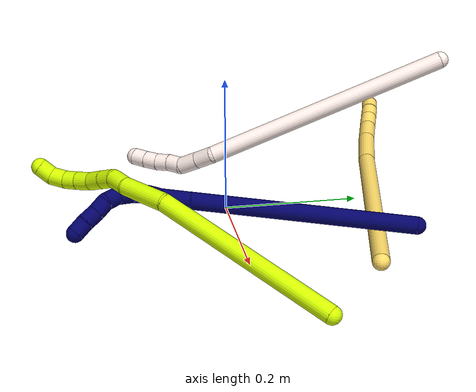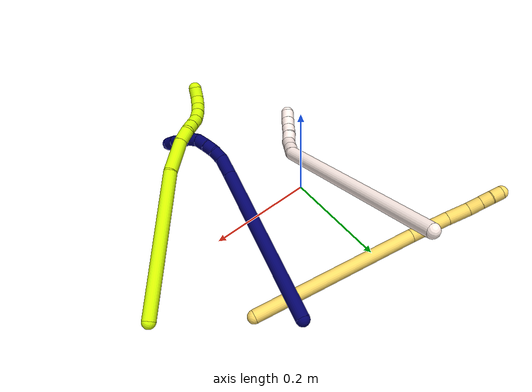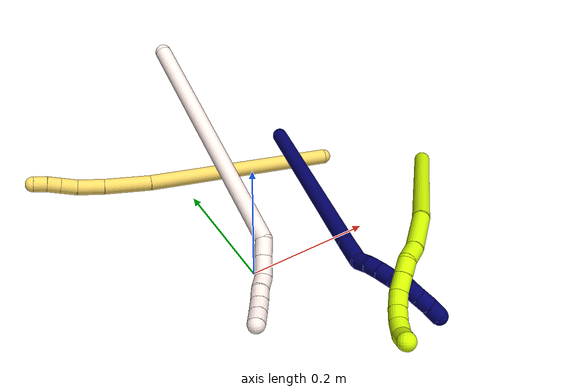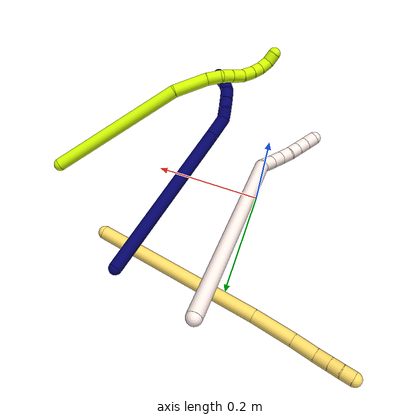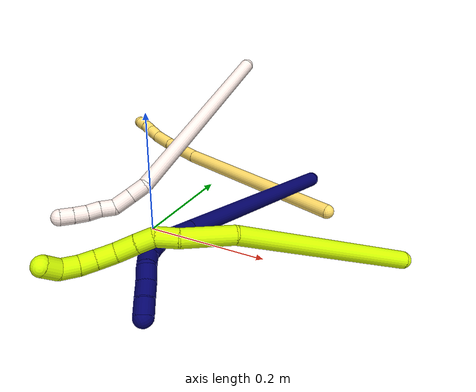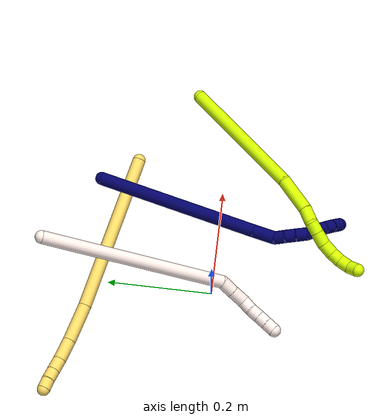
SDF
<sdf version="1.7">
 <world name="default">
  <model name="5">
   <static>0</static>
   <link name="5">
    <collision name="collision-cylinder-e_1_1_4">
     <pose>-0.079078 -0.083416 0.106648 0.663771 -0.528612 -0.186003</pose>
     <geometry><cylinder><radius>0.0125</radius><length>0.313594</length></cylinder></geometry>
     <surface>
      <friction><ode><mu>1.16</mu><mu2>1.16</mu2><slip1>0</slip1><slip2>0</slip2></ode></friction>
      <contact><ode><kp>1e+06</kp><kd>1</kd><max_vel>0</max_vel><min_depth>0.001</min_depth></ode></contact>
     </surface>
    </collision>
    <visual name="visual-cylinder-e_1_1_4">
     <pose>-0.079078 -0.083416 0.106648 0.663771 -0.528612 -0.186003</pose>
     <geometry><cylinder><radius>0.0125</radius><length>0.313594</length></cylinder></geometry>
     <material><ambient>1 0.858824 0.4 1</ambient></material>
    </visual>
    <collision name="collision-cylinder-e_2_4_5">
     <pose>-0.179004 -0.187495 0.237146 0.713914 -0.583826 -0.223199</pose>
     <geometry><cylinder><radius>0.0125</radius><length>0.075643</length></cylinder></geometry>
     <surface>
      <friction><ode><mu>1.16</mu><mu2>1.16</mu2><slip1>0</slip1><slip2>0</slip2></ode></friction>
      <contact><ode><kp>1e+06</kp><kd>1</kd><max_vel>0</max_vel><min_depth>0.001</min_depth></ode></contact>
     </surface>
    </collision>
    <visual name="visual-cylinder-e_2_4_5">
     <pose>-0.179004 -0.187495 0.237146 0.713914 -0.583826 -0.223199</pose>
     <geometry><cylinder><radius>0.0125</radius><length>0.075643</length></cylinder></geometry>
     <material><ambient>1 0.858824 0.4 1</ambient></material>
    </visual>
    <collision name="collision-cylinder-e_3_5_6">
     <pose>-0.212444 -0.220042 0.273462 0.761499 -0.631299 -0.259965</pose>
     <geometry><cylinder><radius>0.0125</radius><length>0.042669</length></cylinder></geometry>
     <surface>
      <friction><ode><mu>1.16</mu><mu2>1.16</mu2><slip1>0</slip1><slip2>0</slip2></ode></friction>
      <contact><ode><kp>1e+06</kp><kd>1</kd><max_vel>0</max_vel><min_depth>0.001</min_depth></ode></contact>
     </surface>
    </collision>
    <visual name="visual-cylinder-e_3_5_6">
     <pose>-0.212444 -0.220042 0.273462 0.761499 -0.631299 -0.259965</pose>
     <geometry><cylinder><radius>0.0125</radius><length>0.042669</length></cylinder></geometry>
     <material><ambient>1 0.858824 0.4 1</ambient></material>
    </visual>
    <collision name="collision-cylinder-e_4_6_7">
     <pose>-0.234369 -0.238139 0.292699 0.742468 -0.793149 -0.323191</pose>
     <geometry><cylinder><radius>0.0125</radius><length>0.026197</length></cylinder></geometry>
     <surface>
      <friction><ode><mu>1.16</mu><mu2>1.16</mu2><slip1>0</slip1><slip2>0</slip2></ode></friction>
      <contact><ode><kp>1e+06</kp><kd>1</kd><max_vel>0</max_vel><min_depth>0.001</min_depth></ode></contact>
     </surface>
    </collision>
    <visual name="visual-cylinder-e_4_6_7">
     <pose>-0.234369 -0.238139 0.292699 0.742468 -0.793149 -0.323191</pose>
     <geometry><cylinder><radius>0.0125</radius><length>0.026197</length></cylinder></geometry>
     <material><ambient>1 0.858824 0.4 1</ambient></material>
    </visual>
    <collision name="collision-cylinder-e_5_7_8">
     <pose>-0.251285 -0.249417 0.304962 0.744932 -0.792836 -0.324208</pose>
     <geometry><cylinder><radius>0.0125</radius><length>0.021289</length></cylinder></geometry>
     <surface>
      <friction><ode><mu>1.16</mu><mu2>1.16</mu2><slip1>0</slip1><slip2>0</slip2></ode></friction>
      <contact><ode><kp>1e+06</kp><kd>1</kd><max_vel>0</max_vel><min_depth>0.001</min_depth></ode></contact>
     </surface>
    </collision>
    <visual name="visual-cylinder-e_5_7_8">
     <pose>-0.251285 -0.249417 0.304962 0.744932 -0.792836 -0.324208</pose>
     <geometry><cylinder><radius>0.0125</radius><length>0.021289</length></cylinder></geometry>
     <material><ambient>1 0.858824 0.4 1</ambient></material>
    </visual>
    <collision name="collision-cylinder-e_6_8_2">
     <pose>-0.265245 -0.259767 0.316584 0.711568 -0.667371 -0.256216</pose>
     <geometry><cylinder><radius>0.0125</radius><length>0.020608</length></cylinder></geometry>
     <surface>
      <friction><ode><mu>1.16</mu><mu2>1.16</mu2><slip1>0</slip1><slip2>0</slip2></ode></friction>
      <contact><ode><kp>1e+06</kp><kd>1</kd><max_vel>0</max_vel><min_depth>0.001</min_depth></ode></contact>
     </surface>
    </collision>
    <visual name="visual-cylinder-e_6_8_2">
     <pose>-0.265245 -0.259767 0.316584 0.711568 -0.667371 -0.256216</pose>
     <geometry><cylinder><radius>0.0125</radius><length>0.020608</length></cylinder></geometry>
     <material><ambient>1 0.858824 0.4 1</ambient></material>
    </visual>
    <collision name="collision-sphere-2">
     <pose>-0.271622 -0.265052 0.322713 0 -0 0</pose>
     <geometry><sphere><radius>0.0125</radius></sphere></geometry>
     <surface>
      <friction><ode><mu>1.16</mu><mu2>1.16</mu2><slip1>0</slip1><slip2>0</slip2></ode></friction>
      <contact><ode><kp>1e+06</kp><kd>1</kd><max_vel>0</max_vel><min_depth>0.001</min_depth></ode></contact>
     </surface>
    </collision>
    <visual name="visual-sphere-2">
     <pose>-0.271622 -0.265052 0.322713 0 -0 0</pose>
     <geometry><sphere><radius>0.0125</radius></sphere></geometry>
     <material><ambient>1 0.858824 0.4 1</ambient></material>
    </visual>
    <collision name="collision-sphere-4">
     <pose>-0.158156 -0.166832 0.213295 0 -0 0</pose>
     <geometry><sphere><radius>0.0125</radius></sphere></geometry>
     <surface>
      <friction><ode><mu>1.16</mu><mu2>1.16</mu2><slip1>0</slip1><slip2>0</slip2></ode></friction>
      <contact><ode><kp>1e+06</kp><kd>1</kd><max_vel>0</max_vel><min_depth>0.001</min_depth></ode></contact>
     </surface>
    </collision>
    <visual name="visual-sphere-4">
     <pose>-0.158156 -0.166832 0.213295 0 -0 0</pose>
     <geometry><sphere><radius>0.0125</radius></sphere></geometry>
     <material><ambient>1 0.858824 0.4 1</ambient></material>
    </visual>
    <collision name="collision-sphere-1">
     <geometry><sphere><radius>0.0125</radius></sphere></geometry>
     <surface>
      <friction><ode><mu>1.16</mu><mu2>1.16</mu2><slip1>0</slip1><slip2>0</slip2></ode></friction>
      <contact><ode><kp>1e+06</kp><kd>1</kd><max_vel>0</max_vel><min_depth>0.001</min_depth></ode></contact>
     </surface>
    </collision>
    <visual name="visual-sphere-1">
     <geometry><sphere><radius>0.0125</radius></sphere></geometry>
     <material><ambient>1 0.858824 0.4 1</ambient></material>
    </visual>
    <collision name="collision-sphere-8">
     <pose>-0.258868 -0.254482 0.310454 0 -0 0</pose>
     <geometry><sphere><radius>0.0125</radius></sphere></geometry>
     <surface>
      <friction><ode><mu>1.16</mu><mu2>1.16</mu2><slip1>0</slip1><slip2>0</slip2></ode></friction>
      <contact><ode><kp>1e+06</kp><kd>1</kd><max_vel>0</max_vel><min_depth>0.001</min_depth></ode></contact>
     </surface>
    </collision>
    <visual name="visual-sphere-8">
     <pose>-0.258868 -0.254482 0.310454 0 -0 0</pose>
     <geometry><sphere><radius>0.0125</radius></sphere></geometry>
     <material><ambient>1 0.858824 0.4 1</ambient></material>
    </visual>
    <collision name="collision-sphere-5">
     <pose>-0.199852 -0.208159 0.260997 0 -0 0</pose>
     <geometry><sphere><radius>0.0125</radius></sphere></geometry>
     <surface>
      <friction><ode><mu>1.16</mu><mu2>1.16</mu2><slip1>0</slip1><slip2>0</slip2></ode></friction>
      <contact><ode><kp>1e+06</kp><kd>1</kd><max_vel>0</max_vel><min_depth>0.001</min_depth></ode></contact>
     </surface>
    </collision>
    <visual name="visual-sphere-5">
     <pose>-0.199852 -0.208159 0.260997 0 -0 0</pose>
     <geometry><sphere><radius>0.0125</radius></sphere></geometry>
     <material><ambient>1 0.858824 0.4 1</ambient></material>
    </visual>
    <collision name="collision-sphere-6">
     <pose>-0.225035 -0.231926 0.285928 0 -0 0</pose>
     <geometry><sphere><radius>0.0125</radius></sphere></geometry>
     <surface>
      <friction><ode><mu>1.16</mu><mu2>1.16</mu2><slip1>0</slip1><slip2>0</slip2></ode></friction>
      <contact><ode><kp>1e+06</kp><kd>1</kd><max_vel>0</max_vel><min_depth>0.001</min_depth></ode></contact>
     </surface>
    </collision>
    <visual name="visual-sphere-6">
     <pose>-0.225035 -0.231926 0.285928 0 -0 0</pose>
     <geometry><sphere><radius>0.0125</radius></sphere></geometry>
     <material><ambient>1 0.858824 0.4 1</ambient></material>
    </visual>
    <collision name="collision-sphere-7">
     <pose>-0.243702 -0.244352 0.29947 0 -0 0</pose>
     <geometry><sphere><radius>0.0125</radius></sphere></geometry>
     <surface>
      <friction><ode><mu>1.16</mu><mu2>1.16</mu2><slip1>0</slip1><slip2>0</slip2></ode></friction>
      <contact><ode><kp>1e+06</kp><kd>1</kd><max_vel>0</max_vel><min_depth>0.001</min_depth></ode></contact>
     </surface>
    </collision>
    <visual name="visual-sphere-7">
     <pose>-0.243702 -0.244352 0.29947 0 -0 0</pose>
     <geometry><sphere><radius>0.0125</radius></sphere></geometry>
     <material><ambient>1 0.858824 0.4 1</ambient></material>
    </visual>
    <inertial>
     <pose>-0.128718 -0.133264 0.16747 0 -0 0</pose>
     <mass>0.5</mass>
     <inertia><ixx>0.00179</ixx><ixy>0</ixy><ixz>0</ixz><iyy>0.001747</iyy><iyz>0</iyz><izz>0.00276</izz></inertia>
    </inertial>
   </link>
   <pose>0.245457 0.170033 0.012283 1.97479 1.06973 -0.641819</pose>
  </model>
  <model name="7">
   <static>0</static>
   <link name="7">
    <collision name="collision-cylinder-e_1_1_4">
     <pose>-0.028344 -0.039597 -0.149468 2.88262 -0.181294 -1.21883</pose>
     <geometry><cylinder><radius>0.0125</radius><length>0.3144</length></cylinder></geometry>
     <surface>
      <friction><ode><mu>1.16</mu><mu2>1.16</mu2><slip1>0</slip1><slip2>0</slip2></ode></friction>
      <contact><ode><kp>1e+06</kp><kd>1</kd><max_vel>0</max_vel><min_depth>0.001</min_depth></ode></contact>
     </surface>
    </collision>
    <visual name="visual-cylinder-e_1_1_4">
     <pose>-0.028344 -0.039597 -0.149468 2.88262 -0.181294 -1.21883</pose>
     <geometry><cylinder><radius>0.0125</radius><length>0.3144</length></cylinder></geometry>
     <material><ambient>0.003922 0 0.403922 1</ambient></material>
    </visual>
    <collision name="collision-cylinder-e_2_4_5">
     <pose>-0.060613 -0.084917 -0.319162 2.86586 -0.184636 -1.17685</pose>
     <geometry><cylinder><radius>0.0125</radius><length>0.042769</length></cylinder></geometry>
     <surface>
      <friction><ode><mu>1.16</mu><mu2>1.16</mu2><slip1>0</slip1><slip2>0</slip2></ode></friction>
      <contact><ode><kp>1e+06</kp><kd>1</kd><max_vel>0</max_vel><min_depth>0.001</min_depth></ode></contact>
     </surface>
    </collision>
    <visual name="visual-cylinder-e_2_4_5">
     <pose>-0.060613 -0.084917 -0.319162 2.86586 -0.184636 -1.17685</pose>
     <geometry><cylinder><radius>0.0125</radius><length>0.042769</length></cylinder></geometry>
     <material><ambient>0.003922 0 0.403922 1</ambient></material>
    </visual>
    <collision name="collision-cylinder-e_3_5_6">
     <pose>-0.067632 -0.097492 -0.346662 2.38595 -0.300195 -0.728127</pose>
     <geometry><cylinder><radius>0.0125</radius><length>0.020918</length></cylinder></geometry>
     <surface>
      <friction><ode><mu>1.16</mu><mu2>1.16</mu2><slip1>0</slip1><slip2>0</slip2></ode></friction>
      <contact><ode><kp>1e+06</kp><kd>1</kd><max_vel>0</max_vel><min_depth>0.001</min_depth></ode></contact>
     </surface>
    </collision>
    <visual name="visual-cylinder-e_3_5_6">
     <pose>-0.067632 -0.097492 -0.346662 2.38595 -0.300195 -0.728127</pose>
     <geometry><cylinder><radius>0.0125</radius><length>0.020918</length></cylinder></geometry>
     <material><ambient>0.003922 0 0.403922 1</ambient></material>
    </visual>
    <collision name="collision-cylinder-e_4_6_7">
     <pose>-0.071303 -0.110808 -0.361621 2.44237 -0.057491 -0.157407</pose>
     <geometry><cylinder><radius>0.0125</radius><length>0.020121</length></cylinder></geometry>
     <surface>
      <friction><ode><mu>1.16</mu><mu2>1.16</mu2><slip1>0</slip1><slip2>0</slip2></ode></friction>
      <contact><ode><kp>1e+06</kp><kd>1</kd><max_vel>0</max_vel><min_depth>0.001</min_depth></ode></contact>
     </surface>
    </collision>
    <visual name="visual-cylinder-e_4_6_7">
     <pose>-0.071303 -0.110808 -0.361621 2.44237 -0.057491 -0.157407</pose>
     <geometry><cylinder><radius>0.0125</radius><length>0.020121</length></cylinder></geometry>
     <material><ambient>0.003922 0 0.403922 1</ambient></material>
    </visual>
    <collision name="collision-cylinder-e_5_7_8">
     <pose>-0.071316 -0.124107 -0.377761 2.46172 0.051953 0.146667</pose>
     <geometry><cylinder><radius>0.0125</radius><length>0.021772</length></cylinder></geometry>
     <surface>
      <friction><ode><mu>1.16</mu><mu2>1.16</mu2><slip1>0</slip1><slip2>0</slip2></ode></friction>
      <contact><ode><kp>1e+06</kp><kd>1</kd><max_vel>0</max_vel><min_depth>0.001</min_depth></ode></contact>
     </surface>
    </collision>
    <visual name="visual-cylinder-e_5_7_8">
     <pose>-0.071316 -0.124107 -0.377761 2.46172 0.051953 0.146667</pose>
     <geometry><cylinder><radius>0.0125</radius><length>0.021772</length></cylinder></geometry>
     <material><ambient>0.003922 0 0.403922 1</ambient></material>
    </visual>
    <collision name="collision-cylinder-e_6_8_9">
     <pose>-0.0673 -0.138248 -0.392107 2.24939 0.352317 0.712618</pose>
     <geometry><cylinder><radius>0.0125</radius><length>0.020001</length></cylinder></geometry>
     <surface>
      <friction><ode><mu>1.16</mu><mu2>1.16</mu2><slip1>0</slip1><slip2>0</slip2></ode></friction>
      <contact><ode><kp>1e+06</kp><kd>1</kd><max_vel>0</max_vel><min_depth>0.001</min_depth></ode></contact>
     </surface>
    </collision>
    <visual name="visual-cylinder-e_6_8_9">
     <pose>-0.0673 -0.138248 -0.392107 2.24939 0.352317 0.712618</pose>
     <geometry><cylinder><radius>0.0125</radius><length>0.020001</length></cylinder></geometry>
     <material><ambient>0.003922 0 0.403922 1</ambient></material>
    </visual>
    <collision name="collision-cylinder-e_7_9_10">
     <pose>-0.056995 -0.150361 -0.403486 2.4223 0.754272 1.62284</pose>
     <geometry><cylinder><radius>0.0125</radius><length>0.020018</length></cylinder></geometry>
     <surface>
      <friction><ode><mu>1.16</mu><mu2>1.16</mu2><slip1>0</slip1><slip2>0</slip2></ode></friction>
      <contact><ode><kp>1e+06</kp><kd>1</kd><max_vel>0</max_vel><min_depth>0.001</min_depth></ode></contact>
     </surface>
    </collision>
    <visual name="visual-cylinder-e_7_9_10">
     <pose>-0.056995 -0.150361 -0.403486 2.4223 0.754272 1.62284</pose>
     <geometry><cylinder><radius>0.0125</radius><length>0.020018</length></cylinder></geometry>
     <material><ambient>0.003922 0 0.403922 1</ambient></material>
    </visual>
    <collision name="collision-cylinder-e_8_10_11">
     <pose>-0.044161 -0.160456 -0.414995 2.42081 0.641026 1.44429</pose>
     <geometry><cylinder><radius>0.0125</radius><length>0.020001</length></cylinder></geometry>
     <surface>
      <friction><ode><mu>1.16</mu><mu2>1.16</mu2><slip1>0</slip1><slip2>0</slip2></ode></friction>
      <contact><ode><kp>1e+06</kp><kd>1</kd><max_vel>0</max_vel><min_depth>0.001</min_depth></ode></contact>
     </surface>
    </collision>
    <visual name="visual-cylinder-e_8_10_11">
     <pose>-0.044161 -0.160456 -0.414995 2.42081 0.641026 1.44429</pose>
     <geometry><cylinder><radius>0.0125</radius><length>0.020001</length></cylinder></geometry>
     <material><ambient>0.003922 0 0.403922 1</ambient></material>
    </visual>
    <collision name="collision-cylinder-e_9_11_2">
     <pose>-0.031274 -0.170037 -0.426839 2.50647 0.762289 1.76773</pose>
     <geometry><cylinder><radius>0.0125</radius><length>0.02</length></cylinder></geometry>
     <surface>
      <friction><ode><mu>1.16</mu><mu2>1.16</mu2><slip1>0</slip1><slip2>0</slip2></ode></friction>
      <contact><ode><kp>1e+06</kp><kd>1</kd><max_vel>0</max_vel><min_depth>0.001</min_depth></ode></contact>
     </surface>
    </collision>
    <visual name="visual-cylinder-e_9_11_2">
     <pose>-0.031274 -0.170037 -0.426839 2.50647 0.762289 1.76773</pose>
     <geometry><cylinder><radius>0.0125</radius><length>0.02</length></cylinder></geometry>
     <material><ambient>0.003922 0 0.403922 1</ambient></material>
    </visual>
    <collision name="collision-sphere-2">
     <pose>-0.024369 -0.174328 -0.432661 0 -0 0</pose>
     <geometry><sphere><radius>0.0125</radius></sphere></geometry>
     <surface>
      <friction><ode><mu>1.16</mu><mu2>1.16</mu2><slip1>0</slip1><slip2>0</slip2></ode></friction>
      <contact><ode><kp>1e+06</kp><kd>1</kd><max_vel>0</max_vel><min_depth>0.001</min_depth></ode></contact>
     </surface>
    </collision>
    <visual name="visual-sphere-2">
     <pose>-0.024369 -0.174328 -0.432661 0 -0 0</pose>
     <geometry><sphere><radius>0.0125</radius></sphere></geometry>
     <material><ambient>0.003922 0 0.403922 1</ambient></material>
    </visual>
    <collision name="collision-sphere-11">
     <pose>-0.03818 -0.165746 -0.421017 0 -0 0</pose>
     <geometry><sphere><radius>0.0125</radius></sphere></geometry>
     <surface>
      <friction><ode><mu>1.16</mu><mu2>1.16</mu2><slip1>0</slip1><slip2>0</slip2></ode></friction>
      <contact><ode><kp>1e+06</kp><kd>1</kd><max_vel>0</max_vel><min_depth>0.001</min_depth></ode></contact>
     </surface>
    </collision>
    <visual name="visual-sphere-11">
     <pose>-0.03818 -0.165746 -0.421017 0 -0 0</pose>
     <geometry><sphere><radius>0.0125</radius></sphere></geometry>
     <material><ambient>0.003922 0 0.403922 1</ambient></material>
    </visual>
    <collision name="collision-sphere-10">
     <pose>-0.050141 -0.155166 -0.408973 0 -0 0</pose>
     <geometry><sphere><radius>0.0125</radius></sphere></geometry>
     <surface>
      <friction><ode><mu>1.16</mu><mu2>1.16</mu2><slip1>0</slip1><slip2>0</slip2></ode></friction>
      <contact><ode><kp>1e+06</kp><kd>1</kd><max_vel>0</max_vel><min_depth>0.001</min_depth></ode></contact>
     </surface>
    </collision>
    <visual name="visual-sphere-10">
     <pose>-0.050141 -0.155166 -0.408973 0 -0 0</pose>
     <geometry><sphere><radius>0.0125</radius></sphere></geometry>
     <material><ambient>0.003922 0 0.403922 1</ambient></material>
    </visual>
    <collision name="collision-sphere-9">
     <pose>-0.063849 -0.145555 -0.397999 0 -0 0</pose>
     <geometry><sphere><radius>0.0125</radius></sphere></geometry>
     <surface>
      <friction><ode><mu>1.16</mu><mu2>1.16</mu2><slip1>0</slip1><slip2>0</slip2></ode></friction>
      <contact><ode><kp>1e+06</kp><kd>1</kd><max_vel>0</max_vel><min_depth>0.001</min_depth></ode></contact>
     </surface>
    </collision>
    <visual name="visual-sphere-9">
     <pose>-0.063849 -0.145555 -0.397999 0 -0 0</pose>
     <geometry><sphere><radius>0.0125</radius></sphere></geometry>
     <material><ambient>0.003922 0 0.403922 1</ambient></material>
    </visual>
    <collision name="collision-sphere-4">
     <pose>-0.056687 -0.079194 -0.298935 0 -0 0</pose>
     <geometry><sphere><radius>0.0125</radius></sphere></geometry>
     <surface>
      <friction><ode><mu>1.16</mu><mu2>1.16</mu2><slip1>0</slip1><slip2>0</slip2></ode></friction>
      <contact><ode><kp>1e+06</kp><kd>1</kd><max_vel>0</max_vel><min_depth>0.001</min_depth></ode></contact>
     </surface>
    </collision>
    <visual name="visual-sphere-4">
     <pose>-0.056687 -0.079194 -0.298935 0 -0 0</pose>
     <geometry><sphere><radius>0.0125</radius></sphere></geometry>
     <material><ambient>0.003922 0 0.403922 1</ambient></material>
    </visual>
    <collision name="collision-sphere-1">
     <geometry><sphere><radius>0.0125</radius></sphere></geometry>
     <surface>
      <friction><ode><mu>1.16</mu><mu2>1.16</mu2><slip1>0</slip1><slip2>0</slip2></ode></friction>
      <contact><ode><kp>1e+06</kp><kd>1</kd><max_vel>0</max_vel><min_depth>0.001</min_depth></ode></contact>
     </surface>
    </collision>
    <visual name="visual-sphere-1">
     <geometry><sphere><radius>0.0125</radius></sphere></geometry>
     <material><ambient>0.003922 0 0.403922 1</ambient></material>
    </visual>
    <collision name="collision-sphere-8">
     <pose>-0.07075 -0.130941 -0.386215 0 -0 0</pose>
     <geometry><sphere><radius>0.0125</radius></sphere></geometry>
     <surface>
      <friction><ode><mu>1.16</mu><mu2>1.16</mu2><slip1>0</slip1><slip2>0</slip2></ode></friction>
      <contact><ode><kp>1e+06</kp><kd>1</kd><max_vel>0</max_vel><min_depth>0.001</min_depth></ode></contact>
     </surface>
    </collision>
    <visual name="visual-sphere-8">
     <pose>-0.07075 -0.130941 -0.386215 0 -0 0</pose>
     <geometry><sphere><radius>0.0125</radius></sphere></geometry>
     <material><ambient>0.003922 0 0.403922 1</ambient></material>
    </visual>
    <collision name="collision-sphere-5">
     <pose>-0.064539 -0.09064 -0.33939 0 -0 0</pose>
     <geometry><sphere><radius>0.0125</radius></sphere></geometry>
     <surface>
      <friction><ode><mu>1.16</mu><mu2>1.16</mu2><slip1>0</slip1><slip2>0</slip2></ode></friction>
      <contact><ode><kp>1e+06</kp><kd>1</kd><max_vel>0</max_vel><min_depth>0.001</min_depth></ode></contact>
     </surface>
    </collision>
    <visual name="visual-sphere-5">
     <pose>-0.064539 -0.09064 -0.33939 0 -0 0</pose>
     <geometry><sphere><radius>0.0125</radius></sphere></geometry>
     <material><ambient>0.003922 0 0.403922 1</ambient></material>
    </visual>
    <collision name="collision-sphere-6">
     <pose>-0.070725 -0.104343 -0.353934 0 -0 0</pose>
     <geometry><sphere><radius>0.0125</radius></sphere></geometry>
     <surface>
      <friction><ode><mu>1.16</mu><mu2>1.16</mu2><slip1>0</slip1><slip2>0</slip2></ode></friction>
      <contact><ode><kp>1e+06</kp><kd>1</kd><max_vel>0</max_vel><min_depth>0.001</min_depth></ode></contact>
     </surface>
    </collision>
    <visual name="visual-sphere-6">
     <pose>-0.070725 -0.104343 -0.353934 0 -0 0</pose>
     <geometry><sphere><radius>0.0125</radius></sphere></geometry>
     <material><ambient>0.003922 0 0.403922 1</ambient></material>
    </visual>
    <collision name="collision-sphere-7">
     <pose>-0.071881 -0.117272 -0.369307 0 -0 0</pose>
     <geometry><sphere><radius>0.0125</radius></sphere></geometry>
     <surface>
      <friction><ode><mu>1.16</mu><mu2>1.16</mu2><slip1>0</slip1><slip2>0</slip2></ode></friction>
      <contact><ode><kp>1e+06</kp><kd>1</kd><max_vel>0</max_vel><min_depth>0.001</min_depth></ode></contact>
     </surface>
    </collision>
    <visual name="visual-sphere-7">
     <pose>-0.071881 -0.117272 -0.369307 0 -0 0</pose>
     <geometry><sphere><radius>0.0125</radius></sphere></geometry>
     <material><ambient>0.003922 0 0.403922 1</ambient></material>
    </visual>
    <inertial>
     <pose>-0.039803 -0.070874 -0.232303 0 -0 0</pose>
     <mass>0.5</mass>
     <inertia>
      <ixx>-0.001518</ixx>
      <ixy>0</ixy>
      <ixz>0</ixz>
      <iyy>-0.003179</iyy>
      <iyz>0</iyz>
      <izz>0.001098</izz>
     </inertia>
    </inertial>
   </link>
   <pose>0.194108 0.235587 0.037048 -1.10326 1.17756 0.01211</pose>
  </model>
  <model name="11">
   <static>0</static>
   <link name="11">
    <collision name="collision-cylinder-e_1_1_4">
     <pose>0.006431 -0.1441 -0.109322 2.21981 0.035542 0.071553</pose>
     <geometry><cylinder><radius>0.0125</radius><length>0.361981</length></cylinder></geometry>
     <surface>
      <friction><ode><mu>1.16</mu><mu2>1.16</mu2><slip1>0</slip1><slip2>0</slip2></ode></friction>
      <contact><ode><kp>1e+06</kp><kd>1</kd><max_vel>0</max_vel><min_depth>0.001</min_depth></ode></contact>
     </surface>
    </collision>
    <visual name="visual-cylinder-e_1_1_4">
     <pose>0.006431 -0.1441 -0.109322 2.21981 0.035542 0.071553</pose>
     <geometry><cylinder><radius>0.0125</radius><length>0.361981</length></cylinder></geometry>
     <material><ambient>1 0.933333 0.909804 1</ambient></material>
    </visual>
    <collision name="collision-cylinder-e_2_4_5">
     <pose>0.007132 -0.29682 -0.227249 2.35526 -0.439818 -0.988596</pose>
     <geometry><cylinder><radius>0.0125</radius><length>0.026921</length></cylinder></geometry>
     <surface>
      <friction><ode><mu>1.16</mu><mu2>1.16</mu2><slip1>0</slip1><slip2>0</slip2></ode></friction>
      <contact><ode><kp>1e+06</kp><kd>1</kd><max_vel>0</max_vel><min_depth>0.001</min_depth></ode></contact>
     </surface>
    </collision>
    <visual name="visual-cylinder-e_2_4_5">
     <pose>0.007132 -0.29682 -0.227249 2.35526 -0.439818 -0.988596</pose>
     <geometry><cylinder><radius>0.0125</radius><length>0.026921</length></cylinder></geometry>
     <material><ambient>1 0.933333 0.909804 1</ambient></material>
    </visual>
    <collision name="collision-cylinder-e_3_5_6">
     <pose>-0.004584 -0.315353 -0.245138 2.3235 -0.415023 -0.904256</pose>
     <geometry><cylinder><radius>0.0125</radius><length>0.029684</length></cylinder></geometry>
     <surface>
      <friction><ode><mu>1.16</mu><mu2>1.16</mu2><slip1>0</slip1><slip2>0</slip2></ode></friction>
      <contact><ode><kp>1e+06</kp><kd>1</kd><max_vel>0</max_vel><min_depth>0.001</min_depth></ode></contact>
     </surface>
    </collision>
    <visual name="visual-cylinder-e_3_5_6">
     <pose>-0.004584 -0.315353 -0.245138 2.3235 -0.415023 -0.904256</pose>
     <geometry><cylinder><radius>0.0125</radius><length>0.029684</length></cylinder></geometry>
     <material><ambient>1 0.933333 0.909804 1</ambient></material>
    </visual>
    <collision name="collision-cylinder-e_4_6_7">
     <pose>-0.017121 -0.333378 -0.256451 1.81584 -0.664644 -0.832451</pose>
     <geometry><cylinder><radius>0.0125</radius><length>0.021247</length></cylinder></geometry>
     <surface>
      <friction><ode><mu>1.16</mu><mu2>1.16</mu2><slip1>0</slip1><slip2>0</slip2></ode></friction>
      <contact><ode><kp>1e+06</kp><kd>1</kd><max_vel>0</max_vel><min_depth>0.001</min_depth></ode></contact>
     </surface>
    </collision>
    <visual name="visual-cylinder-e_4_6_7">
     <pose>-0.017121 -0.333378 -0.256451 1.81584 -0.664644 -0.832451</pose>
     <geometry><cylinder><radius>0.0125</radius><length>0.021247</length></cylinder></geometry>
     <material><ambient>1 0.933333 0.909804 1</ambient></material>
    </visual>
    <collision name="collision-cylinder-e_5_7_8">
     <pose>-0.028547 -0.349604 -0.261741 1.95303 -0.508542 -0.734307</pose>
     <geometry><cylinder><radius>0.0125</radius><length>0.020022</length></cylinder></geometry>
     <surface>
      <friction><ode><mu>1.16</mu><mu2>1.16</mu2><slip1>0</slip1><slip2>0</slip2></ode></friction>
      <contact><ode><kp>1e+06</kp><kd>1</kd><max_vel>0</max_vel><min_depth>0.001</min_depth></ode></contact>
     </surface>
    </collision>
    <visual name="visual-cylinder-e_5_7_8">
     <pose>-0.028547 -0.349604 -0.261741 1.95303 -0.508542 -0.734307</pose>
     <geometry><cylinder><radius>0.0125</radius><length>0.020022</length></cylinder></geometry>
     <material><ambient>1 0.933333 0.909804 1</ambient></material>
    </visual>
    <collision name="collision-cylinder-e_6_8_9">
     <pose>-0.038707 -0.366021 -0.266975 1.80396 -0.554399 -0.691127</pose>
     <geometry><cylinder><radius>0.0125</radius><length>0.020078</length></cylinder></geometry>
     <surface>
      <friction><ode><mu>1.16</mu><mu2>1.16</mu2><slip1>0</slip1><slip2>0</slip2></ode></friction>
      <contact><ode><kp>1e+06</kp><kd>1</kd><max_vel>0</max_vel><min_depth>0.001</min_depth></ode></contact>
     </surface>
    </collision>
    <visual name="visual-cylinder-e_6_8_9">
     <pose>-0.038707 -0.366021 -0.266975 1.80396 -0.554399 -0.691127</pose>
     <geometry><cylinder><radius>0.0125</radius><length>0.020078</length></cylinder></geometry>
     <material><ambient>1 0.933333 0.909804 1</ambient></material>
    </visual>
    <collision name="collision-cylinder-e_7_9_2">
     <pose>-0.049347 -0.38267 -0.270486 1.75319 -0.563005 -0.668708</pose>
     <geometry><cylinder><radius>0.0125</radius><length>0.020068</length></cylinder></geometry>
     <surface>
      <friction><ode><mu>1.16</mu><mu2>1.16</mu2><slip1>0</slip1><slip2>0</slip2></ode></friction>
      <contact><ode><kp>1e+06</kp><kd>1</kd><max_vel>0</max_vel><min_depth>0.001</min_depth></ode></contact>
     </surface>
    </collision>
    <visual name="visual-cylinder-e_7_9_2">
     <pose>-0.049347 -0.38267 -0.270486 1.75319 -0.563005 -0.668708</pose>
     <geometry><cylinder><radius>0.0125</radius><length>0.020068</length></cylinder></geometry>
     <material><ambient>1 0.933333 0.909804 1</ambient></material>
    </visual>
    <collision name="collision-sphere-2">
     <pose>-0.054702 -0.391014 -0.272025 0 -0 0</pose>
     <geometry><sphere><radius>0.0125</radius></sphere></geometry>
     <surface>
      <friction><ode><mu>1.16</mu><mu2>1.16</mu2><slip1>0</slip1><slip2>0</slip2></ode></friction>
      <contact><ode><kp>1e+06</kp><kd>1</kd><max_vel>0</max_vel><min_depth>0.001</min_depth></ode></contact>
     </surface>
    </collision>
    <visual name="visual-sphere-2">
     <pose>-0.054702 -0.391014 -0.272025 0 -0 0</pose>
     <geometry><sphere><radius>0.0125</radius></sphere></geometry>
     <material><ambient>1 0.933333 0.909804 1</ambient></material>
    </visual>
    <collision name="collision-sphere-9">
     <pose>-0.043991 -0.374325 -0.268947 0 -0 0</pose>
     <geometry><sphere><radius>0.0125</radius></sphere></geometry>
     <surface>
      <friction><ode><mu>1.16</mu><mu2>1.16</mu2><slip1>0</slip1><slip2>0</slip2></ode></friction>
      <contact><ode><kp>1e+06</kp><kd>1</kd><max_vel>0</max_vel><min_depth>0.001</min_depth></ode></contact>
     </surface>
    </collision>
    <visual name="visual-sphere-9">
     <pose>-0.043991 -0.374325 -0.268947 0 -0 0</pose>
     <geometry><sphere><radius>0.0125</radius></sphere></geometry>
     <material><ambient>1 0.933333 0.909804 1</ambient></material>
    </visual>
    <collision name="collision-sphere-4">
     <pose>0.012863 -0.2882 -0.218645 0 -0 0</pose>
     <geometry><sphere><radius>0.0125</radius></sphere></geometry>
     <surface>
      <friction><ode><mu>1.16</mu><mu2>1.16</mu2><slip1>0</slip1><slip2>0</slip2></ode></friction>
      <contact><ode><kp>1e+06</kp><kd>1</kd><max_vel>0</max_vel><min_depth>0.001</min_depth></ode></contact>
     </surface>
    </collision>
    <visual name="visual-sphere-4">
     <pose>0.012863 -0.2882 -0.218645 0 -0 0</pose>
     <geometry><sphere><radius>0.0125</radius></sphere></geometry>
     <material><ambient>1 0.933333 0.909804 1</ambient></material>
    </visual>
    <collision name="collision-sphere-1">
     <geometry><sphere><radius>0.0125</radius></sphere></geometry>
     <surface>
      <friction><ode><mu>1.16</mu><mu2>1.16</mu2><slip1>0</slip1><slip2>0</slip2></ode></friction>
      <contact><ode><kp>1e+06</kp><kd>1</kd><max_vel>0</max_vel><min_depth>0.001</min_depth></ode></contact>
     </surface>
    </collision>
    <visual name="visual-sphere-1">
     <geometry><sphere><radius>0.0125</radius></sphere></geometry>
     <material><ambient>1 0.933333 0.909804 1</ambient></material>
    </visual>
    <collision name="collision-sphere-8">
     <pose>-0.033422 -0.357717 -0.265003 0 -0 0</pose>
     <geometry><sphere><radius>0.0125</radius></sphere></geometry>
     <surface>
      <friction><ode><mu>1.16</mu><mu2>1.16</mu2><slip1>0</slip1><slip2>0</slip2></ode></friction>
      <contact><ode><kp>1e+06</kp><kd>1</kd><max_vel>0</max_vel><min_depth>0.001</min_depth></ode></contact>
     </surface>
    </collision>
    <visual name="visual-sphere-8">
     <pose>-0.033422 -0.357717 -0.265003 0 -0 0</pose>
     <geometry><sphere><radius>0.0125</radius></sphere></geometry>
     <material><ambient>1 0.933333 0.909804 1</ambient></material>
    </visual>
    <collision name="collision-sphere-5">
     <pose>0.0014 -0.305441 -0.235853 0 -0 0</pose>
     <geometry><sphere><radius>0.0125</radius></sphere></geometry>
     <surface>
      <friction><ode><mu>1.16</mu><mu2>1.16</mu2><slip1>0</slip1><slip2>0</slip2></ode></friction>
      <contact><ode><kp>1e+06</kp><kd>1</kd><max_vel>0</max_vel><min_depth>0.001</min_depth></ode></contact>
     </surface>
    </collision>
    <visual name="visual-sphere-5">
     <pose>0.0014 -0.305441 -0.235853 0 -0 0</pose>
     <geometry><sphere><radius>0.0125</radius></sphere></geometry>
     <material><ambient>1 0.933333 0.909804 1</ambient></material>
    </visual>
    <collision name="collision-sphere-6">
     <pose>-0.010568 -0.325266 -0.254423 0 -0 0</pose>
     <geometry><sphere><radius>0.0125</radius></sphere></geometry>
     <surface>
      <friction><ode><mu>1.16</mu><mu2>1.16</mu2><slip1>0</slip1><slip2>0</slip2></ode></friction>
      <contact><ode><kp>1e+06</kp><kd>1</kd><max_vel>0</max_vel><min_depth>0.001</min_depth></ode></contact>
     </surface>
    </collision>
    <visual name="visual-sphere-6">
     <pose>-0.010568 -0.325266 -0.254423 0 -0 0</pose>
     <geometry><sphere><radius>0.0125</radius></sphere></geometry>
     <material><ambient>1 0.933333 0.909804 1</ambient></material>
    </visual>
    <collision name="collision-sphere-7">
     <pose>-0.023673 -0.341491 -0.25848 0 -0 0</pose>
     <geometry><sphere><radius>0.0125</radius></sphere></geometry>
     <surface>
      <friction><ode><mu>1.16</mu><mu2>1.16</mu2><slip1>0</slip1><slip2>0</slip2></ode></friction>
      <contact><ode><kp>1e+06</kp><kd>1</kd><max_vel>0</max_vel><min_depth>0.001</min_depth></ode></contact>
     </surface>
    </collision>
    <visual name="visual-sphere-7">
     <pose>-0.023673 -0.341491 -0.25848 0 -0 0</pose>
     <geometry><sphere><radius>0.0125</radius></sphere></geometry>
     <material><ambient>1 0.933333 0.909804 1</ambient></material>
    </visual>
    <inertial>
     <pose>-0.000638 -0.197248 -0.148889 0 -0 0</pose>
     <mass>0.5</mass>
     <inertia>
      <ixx>0.004232</ixx>
      <ixy>0</ixy>
      <ixz>0</ixz>
      <iyy>-0.002138</iyy>
      <iyz>0</iyz>
      <izz>0.00301</izz>
     </inertia>
    </inertial>
   </link>
   <pose>0.019639 0.316757 0.219935 -0.277387 -0.006949 -0.082848</pose>
  </model>
  <model name="15">
   <static>0</static>
   <link name="15">
    <collision name="collision-cylinder-e_1_1_4">
     <pose>-0.11688 -0.05754 -0.031157 2.06708 -1.06043 -1.55472</pose>
     <geometry><cylinder><radius>0.0125</radius><length>0.2679</length></cylinder></geometry>
     <surface>
      <friction><ode><mu>1.16</mu><mu2>1.16</mu2><slip1>0</slip1><slip2>0</slip2></ode></friction>
      <contact><ode><kp>1e+06</kp><kd>1</kd><max_vel>0</max_vel><min_depth>0.001</min_depth></ode></contact>
     </surface>
    </collision>
    <visual name="visual-cylinder-e_1_1_4">
     <pose>-0.11688 -0.05754 -0.031157 2.06708 -1.06043 -1.55472</pose>
     <geometry><cylinder><radius>0.0125</radius><length>0.2679</length></cylinder></geometry>
     <material><ambient>0.835294 1 0 1</ambient></material>
    </visual>
    <collision name="collision-cylinder-e_2_4_5">
     <pose>-0.267089 -0.12284 -0.065142 1.92026 -1.32788 -1.68203</pose>
     <geometry><cylinder><radius>0.0125</radius><length>0.068674</length></cylinder></geometry>
     <surface>
      <friction><ode><mu>1.16</mu><mu2>1.16</mu2><slip1>0</slip1><slip2>0</slip2></ode></friction>
      <contact><ode><kp>1e+06</kp><kd>1</kd><max_vel>0</max_vel><min_depth>0.001</min_depth></ode></contact>
     </surface>
    </collision>
    <visual name="visual-cylinder-e_2_4_5">
     <pose>-0.267089 -0.12284 -0.065142 1.92026 -1.32788 -1.68203</pose>
     <geometry><cylinder><radius>0.0125</radius><length>0.068674</length></cylinder></geometry>
     <material><ambient>0.835294 1 0 1</ambient></material>
    </visual>
    <collision name="collision-cylinder-e_3_5_6">
     <pose>-0.313939 -0.134868 -0.066405 1.21932 -1.24649 -0.930545</pose>
     <geometry><cylinder><radius>0.0125</radius><length>0.028531</length></cylinder></geometry>
     <surface>
      <friction><ode><mu>1.16</mu><mu2>1.16</mu2><slip1>0</slip1><slip2>0</slip2></ode></friction>
      <contact><ode><kp>1e+06</kp><kd>1</kd><max_vel>0</max_vel><min_depth>0.001</min_depth></ode></contact>
     </surface>
    </collision>
    <visual name="visual-cylinder-e_3_5_6">
     <pose>-0.313939 -0.134868 -0.066405 1.21932 -1.24649 -0.930545</pose>
     <geometry><cylinder><radius>0.0125</radius><length>0.028531</length></cylinder></geometry>
     <material><ambient>0.835294 1 0 1</ambient></material>
    </visual>
    <collision name="collision-cylinder-e_4_6_7">
     <pose>-0.338652 -0.137545 -0.063857 -1.01763 -1.40524 0.882542</pose>
     <geometry><cylinder><radius>0.0125</radius><length>0.022693</length></cylinder></geometry>
     <surface>
      <friction><ode><mu>1.16</mu><mu2>1.16</mu2><slip1>0</slip1><slip2>0</slip2></ode></friction>
      <contact><ode><kp>1e+06</kp><kd>1</kd><max_vel>0</max_vel><min_depth>0.001</min_depth></ode></contact>
     </surface>
    </collision>
    <visual name="visual-cylinder-e_4_6_7">
     <pose>-0.338652 -0.137545 -0.063857 -1.01763 -1.40524 0.882542</pose>
     <geometry><cylinder><radius>0.0125</radius><length>0.022693</length></cylinder></geometry>
     <material><ambient>0.835294 1 0 1</ambient></material>
    </visual>
    <collision name="collision-cylinder-e_5_7_8">
     <pose>-0.362436 -0.133834 -0.061823 -1.11002 -1.38503 0.950126</pose>
     <geometry><cylinder><radius>0.0125</radius><length>0.025626</length></cylinder></geometry>
     <surface>
      <friction><ode><mu>1.16</mu><mu2>1.16</mu2><slip1>0</slip1><slip2>0</slip2></ode></friction>
      <contact><ode><kp>1e+06</kp><kd>1</kd><max_vel>0</max_vel><min_depth>0.001</min_depth></ode></contact>
     </surface>
    </collision>
    <visual name="visual-cylinder-e_5_7_8">
     <pose>-0.362436 -0.133834 -0.061823 -1.11002 -1.38503 0.950126</pose>
     <geometry><cylinder><radius>0.0125</radius><length>0.025626</length></cylinder></geometry>
     <material><ambient>0.835294 1 0 1</ambient></material>
    </visual>
    <collision name="collision-cylinder-e_6_8_9">
     <pose>-0.38683 -0.131057 -0.062316 -2.73944 -1.42939 2.68015</pose>
     <geometry><cylinder><radius>0.0125</radius><length>0.023841</length></cylinder></geometry>
     <surface>
      <friction><ode><mu>1.16</mu><mu2>1.16</mu2><slip1>0</slip1><slip2>0</slip2></ode></friction>
      <contact><ode><kp>1e+06</kp><kd>1</kd><max_vel>0</max_vel><min_depth>0.001</min_depth></ode></contact>
     </surface>
    </collision>
    <visual name="visual-cylinder-e_6_8_9">
     <pose>-0.38683 -0.131057 -0.062316 -2.73944 -1.42939 2.68015</pose>
     <geometry><cylinder><radius>0.0125</radius><length>0.023841</length></cylinder></geometry>
     <material><ambient>0.835294 1 0 1</ambient></material>
    </visual>
    <collision name="collision-cylinder-e_7_9_10">
     <pose>-0.40834 -0.130335 -0.06634 -3.11548 -1.32087 3.10798</pose>
     <geometry><cylinder><radius>0.0125</radius><length>0.020039</length></cylinder></geometry>
     <surface>
      <friction><ode><mu>1.16</mu><mu2>1.16</mu2><slip1>0</slip1><slip2>0</slip2></ode></friction>
      <contact><ode><kp>1e+06</kp><kd>1</kd><max_vel>0</max_vel><min_depth>0.001</min_depth></ode></contact>
     </surface>
    </collision>
    <visual name="visual-cylinder-e_7_9_10">
     <pose>-0.40834 -0.130335 -0.06634 -3.11548 -1.32087 3.10798</pose>
     <geometry><cylinder><radius>0.0125</radius><length>0.020039</length></cylinder></geometry>
     <material><ambient>0.835294 1 0 1</ambient></material>
    </visual>
    <collision name="collision-cylinder-e_8_10_11">
     <pose>-0.427967 -0.132059 -0.073139 2.74917 -1.13017 -2.53402</pose>
     <geometry><cylinder><radius>0.0125</radius><length>0.021933</length></cylinder></geometry>
     <surface>
      <friction><ode><mu>1.16</mu><mu2>1.16</mu2><slip1>0</slip1><slip2>0</slip2></ode></friction>
      <contact><ode><kp>1e+06</kp><kd>1</kd><max_vel>0</max_vel><min_depth>0.001</min_depth></ode></contact>
     </surface>
    </collision>
    <visual name="visual-cylinder-e_8_10_11">
     <pose>-0.427967 -0.132059 -0.073139 2.74917 -1.13017 -2.53402</pose>
     <geometry><cylinder><radius>0.0125</radius><length>0.021933</length></cylinder></geometry>
     <material><ambient>0.835294 1 0 1</ambient></material>
    </visual>
    <collision name="collision-cylinder-e_9_11_2">
     <pose>-0.44464 -0.139447 -0.083011 2.3518 -0.708245 -1.45121</pose>
     <geometry><cylinder><radius>0.0125</radius><length>0.020764</length></cylinder></geometry>
     <surface>
      <friction><ode><mu>1.16</mu><mu2>1.16</mu2><slip1>0</slip1><slip2>0</slip2></ode></friction>
      <contact><ode><kp>1e+06</kp><kd>1</kd><max_vel>0</max_vel><min_depth>0.001</min_depth></ode></contact>
     </surface>
    </collision>
    <visual name="visual-cylinder-e_9_11_2">
     <pose>-0.44464 -0.139447 -0.083011 2.3518 -0.708245 -1.45121</pose>
     <geometry><cylinder><radius>0.0125</radius><length>0.020764</length></cylinder></geometry>
     <material><ambient>0.835294 1 0 1</ambient></material>
    </visual>
    <collision name="collision-sphere-2">
     <pose>-0.451393 -0.145048 -0.088563 0 -0 0</pose>
     <geometry><sphere><radius>0.0125</radius></sphere></geometry>
     <surface>
      <friction><ode><mu>1.16</mu><mu2>1.16</mu2><slip1>0</slip1><slip2>0</slip2></ode></friction>
      <contact><ode><kp>1e+06</kp><kd>1</kd><max_vel>0</max_vel><min_depth>0.001</min_depth></ode></contact>
     </surface>
    </collision>
    <visual name="visual-sphere-2">
     <pose>-0.451393 -0.145048 -0.088563 0 -0 0</pose>
     <geometry><sphere><radius>0.0125</radius></sphere></geometry>
     <material><ambient>0.835294 1 0 1</ambient></material>
    </visual>
    <collision name="collision-sphere-11">
     <pose>-0.437886 -0.133847 -0.07746 0 -0 0</pose>
     <geometry><sphere><radius>0.0125</radius></sphere></geometry>
     <surface>
      <friction><ode><mu>1.16</mu><mu2>1.16</mu2><slip1>0</slip1><slip2>0</slip2></ode></friction>
      <contact><ode><kp>1e+06</kp><kd>1</kd><max_vel>0</max_vel><min_depth>0.001</min_depth></ode></contact>
     </surface>
    </collision>
    <visual name="visual-sphere-11">
     <pose>-0.437886 -0.133847 -0.07746 0 -0 0</pose>
     <geometry><sphere><radius>0.0125</radius></sphere></geometry>
     <material><ambient>0.835294 1 0 1</ambient></material>
    </visual>
    <collision name="collision-sphere-10">
     <pose>-0.418048 -0.13027 -0.068817 0 -0 0</pose>
     <geometry><sphere><radius>0.0125</radius></sphere></geometry>
     <surface>
      <friction><ode><mu>1.16</mu><mu2>1.16</mu2><slip1>0</slip1><slip2>0</slip2></ode></friction>
      <contact><ode><kp>1e+06</kp><kd>1</kd><max_vel>0</max_vel><min_depth>0.001</min_depth></ode></contact>
     </surface>
    </collision>
    <visual name="visual-sphere-10">
     <pose>-0.418048 -0.13027 -0.068817 0 -0 0</pose>
     <geometry><sphere><radius>0.0125</radius></sphere></geometry>
     <material><ambient>0.835294 1 0 1</ambient></material>
    </visual>
    <collision name="collision-sphere-9">
     <pose>-0.398631 -0.130399 -0.063862 0 -0 0</pose>
     <geometry><sphere><radius>0.0125</radius></sphere></geometry>
     <surface>
      <friction><ode><mu>1.16</mu><mu2>1.16</mu2><slip1>0</slip1><slip2>0</slip2></ode></friction>
      <contact><ode><kp>1e+06</kp><kd>1</kd><max_vel>0</max_vel><min_depth>0.001</min_depth></ode></contact>
     </surface>
    </collision>
    <visual name="visual-sphere-9">
     <pose>-0.398631 -0.130399 -0.063862 0 -0 0</pose>
     <geometry><sphere><radius>0.0125</radius></sphere></geometry>
     <material><ambient>0.835294 1 0 1</ambient></material>
    </visual>
    <collision name="collision-sphere-4">
     <pose>-0.23376 -0.11508 -0.062314 0 -0 0</pose>
     <geometry><sphere><radius>0.0125</radius></sphere></geometry>
     <surface>
      <friction><ode><mu>1.16</mu><mu2>1.16</mu2><slip1>0</slip1><slip2>0</slip2></ode></friction>
      <contact><ode><kp>1e+06</kp><kd>1</kd><max_vel>0</max_vel><min_depth>0.001</min_depth></ode></contact>
     </surface>
    </collision>
    <visual name="visual-sphere-4">
     <pose>-0.23376 -0.11508 -0.062314 0 -0 0</pose>
     <geometry><sphere><radius>0.0125</radius></sphere></geometry>
     <material><ambient>0.835294 1 0 1</ambient></material>
    </visual>
    <collision name="collision-sphere-1">
     <geometry><sphere><radius>0.0125</radius></sphere></geometry>
     <surface>
      <friction><ode><mu>1.16</mu><mu2>1.16</mu2><slip1>0</slip1><slip2>0</slip2></ode></friction>
      <contact><ode><kp>1e+06</kp><kd>1</kd><max_vel>0</max_vel><min_depth>0.001</min_depth></ode></contact>
     </surface>
    </collision>
    <visual name="visual-sphere-1">
     <geometry><sphere><radius>0.0125</radius></sphere></geometry>
     <material><ambient>0.835294 1 0 1</ambient></material>
    </visual>
    <collision name="collision-sphere-8">
     <pose>-0.375029 -0.131714 -0.060771 0 -0 0</pose>
     <geometry><sphere><radius>0.0125</radius></sphere></geometry>
     <surface>
      <friction><ode><mu>1.16</mu><mu2>1.16</mu2><slip1>0</slip1><slip2>0</slip2></ode></friction>
      <contact><ode><kp>1e+06</kp><kd>1</kd><max_vel>0</max_vel><min_depth>0.001</min_depth></ode></contact>
     </surface>
    </collision>
    <visual name="visual-sphere-8">
     <pose>-0.375029 -0.131714 -0.060771 0 -0 0</pose>
     <geometry><sphere><radius>0.0125</radius></sphere></geometry>
     <material><ambient>0.835294 1 0 1</ambient></material>
    </visual>
    <collision name="collision-sphere-5">
     <pose>-0.300417 -0.1306 -0.06797 0 -0 0</pose>
     <geometry><sphere><radius>0.0125</radius></sphere></geometry>
     <surface>
      <friction><ode><mu>1.16</mu><mu2>1.16</mu2><slip1>0</slip1><slip2>0</slip2></ode></friction>
      <contact><ode><kp>1e+06</kp><kd>1</kd><max_vel>0</max_vel><min_depth>0.001</min_depth></ode></contact>
     </surface>
    </collision>
    <visual name="visual-sphere-5">
     <pose>-0.300417 -0.1306 -0.06797 0 -0 0</pose>
     <geometry><sphere><radius>0.0125</radius></sphere></geometry>
     <material><ambient>0.835294 1 0 1</ambient></material>
    </visual>
    <collision name="collision-sphere-6">
     <pose>-0.327461 -0.139136 -0.06484 0 -0 0</pose>
     <geometry><sphere><radius>0.0125</radius></sphere></geometry>
     <surface>
      <friction><ode><mu>1.16</mu><mu2>1.16</mu2><slip1>0</slip1><slip2>0</slip2></ode></friction>
      <contact><ode><kp>1e+06</kp><kd>1</kd><max_vel>0</max_vel><min_depth>0.001</min_depth></ode></contact>
     </surface>
    </collision>
    <visual name="visual-sphere-6">
     <pose>-0.327461 -0.139136 -0.06484 0 -0 0</pose>
     <geometry><sphere><radius>0.0125</radius></sphere></geometry>
     <material><ambient>0.835294 1 0 1</ambient></material>
    </visual>
    <collision name="collision-sphere-7">
     <pose>-0.349844 -0.135954 -0.062875 0 -0 0</pose>
     <geometry><sphere><radius>0.0125</radius></sphere></geometry>
     <surface>
      <friction><ode><mu>1.16</mu><mu2>1.16</mu2><slip1>0</slip1><slip2>0</slip2></ode></friction>
      <contact><ode><kp>1e+06</kp><kd>1</kd><max_vel>0</max_vel><min_depth>0.001</min_depth></ode></contact>
     </surface>
    </collision>
    <visual name="visual-sphere-7">
     <pose>-0.349844 -0.135954 -0.062875 0 -0 0</pose>
     <geometry><sphere><radius>0.0125</radius></sphere></geometry>
     <material><ambient>0.835294 1 0 1</ambient></material>
    </visual>
    <inertial>
     <pose>-0.223216 -0.091556 -0.047783 0 -0 0</pose>
     <mass>0.5</mass>
     <inertia>
      <ixx>-0.00082</ixx>
      <ixy>0</ixy>
      <ixz>0</ixz>
      <iyy>0.000458</iyy>
      <iyz>0</iyz>
      <izz>0.002143</izz>
     </inertia>
    </inertial>
   </link>
   <pose>0.387128 0.066695 0.0168 -1.88649 -0.167059 0.707837</pose>
  </model>
 </world>
</sdf>
